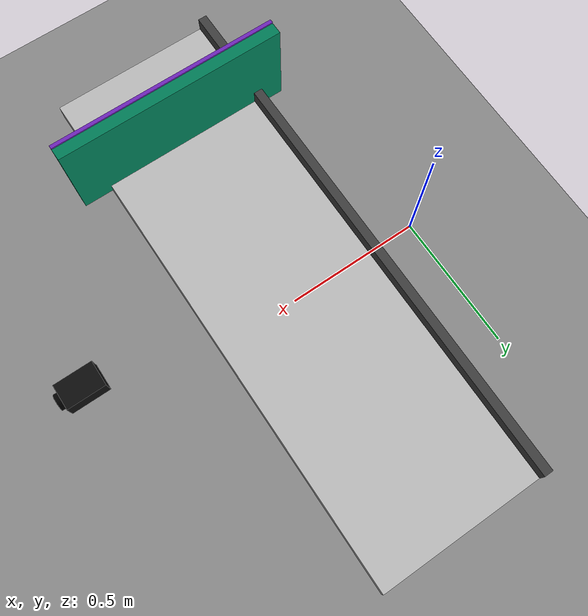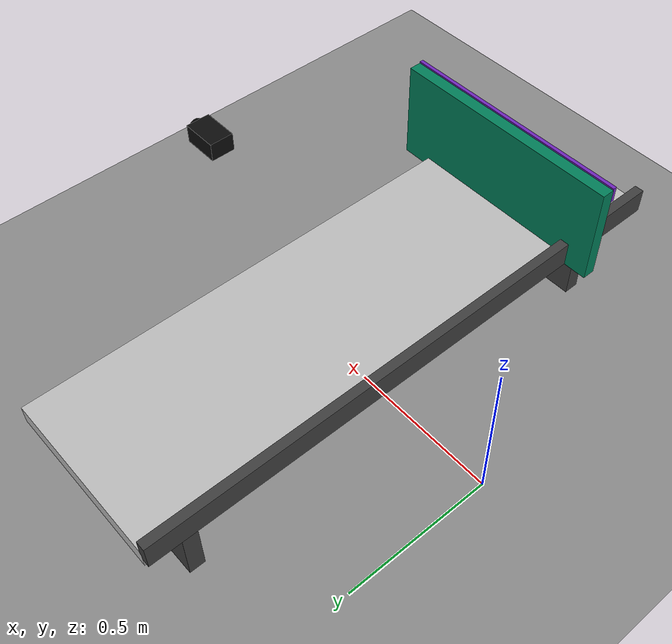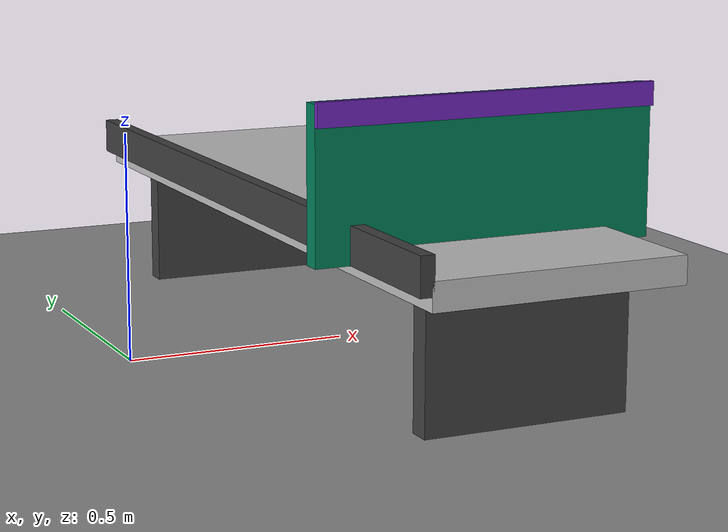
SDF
<sdf version="1.9">
 <world name="ur3_integrated">
  <plugin filename="ignition-gazebo-physics-system" name="ignition::gazebo::systems::Physics"/>
  <plugin filename="ignition-gazebo-user-commands-system" name="ignition::gazebo::systems::UserCommands"/>
  <plugin filename="ignition-gazebo-scene-broadcaster-system" name="ignition::gazebo::systems::SceneBroadcaster"/>
  <plugin filename="ignition-gazebo-sensors-system" name="ignition::gazebo::systems::Sensors">
   <render_engine>ogre2</render_engine>
  </plugin>
  <gravity>0 0 -9.8</gravity>
  <light name="sun" type="directional">
   <pose>0 0 10 0 0 0</pose>
   <diffuse>0.8 0.8 0.8 1</diffuse>
   <specular>0.2 0.2 0.2 1</specular>
   <direction>-0.5 0.1 -0.9</direction>
  </light>
  <model name="ground_plane">
   <static>true</static>
   <link name="link">
    <collision name="collision">
     <geometry><plane><normal>0 0 1</normal><size>6 6</size></plane></geometry>
    </collision>
    <visual name="visual">
     <geometry><plane><normal>0 0 1</normal><size>6 6</size></plane></geometry>
     <material><ambient>0.55 0.55 0.55 1</ambient><diffuse>0.55 0.55 0.55 1</diffuse></material>
    </visual>
   </link>
  </model>
  <include>
   <uri>model://convenience_shelf</uri>
   <name>convenience_shelf</name>
   <pose>0.55 0.0 -0.05 0 0 1.5708</pose>
  </include>
  <include>
   <uri>model://fixed_rgbd_camera</uri>
   <name>fixed_rgbd_camera</name>
   <pose>1.2 0.0 0.5 0 0 3.14159</pose>
  </include>
 </world>
</sdf>

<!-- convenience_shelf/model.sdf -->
<sdf version="1.9">
  <model name="convenience_shelf">
    <static>true</static>

    <link name="link">

      <!-- main shelf board -->
      <collision name="shelf_collision">
        <pose>0 0 0.36 0 0 0</pose>
        <geometry>
          <box>
            <size>1.80 0.55 0.06</size>
          </box>
        </geometry>
      </collision>

      <visual name="shelf_visual">
        <pose>0 0 0.36 0 0 0</pose>
        <geometry>
          <box>
            <size>1.80 0.55 0.06</size>
          </box>
        </geometry>
        <material>
          <ambient>0.75 0.75 0.75 1</ambient>
          <diffuse>0.75 0.75 0.75 1</diffuse>
        </material>
      </visual>

      <!-- lower and smaller back board -->
      <collision name="back_collision">
        <pose>-0.58 0 0.52 0 0 0</pose>
        <geometry>
          <box>
            <size>0.04 0.75 0.32</size>
          </box>
        </geometry>
      </collision>

      <visual name="back_visual">
        <pose>-0.58 0 0.52 0 0 0</pose>
        <geometry>
          <box>
            <size>0.04 0.75 0.32</size>
          </box>
        </geometry>
        <material>
          <ambient>0.0 0.50 0.35 1</ambient>
          <diffuse>0.0 0.50 0.35 1</diffuse>
        </material>
      </visual>

      <!-- purple accent strip -->
      <visual name="accent_strip">
        <pose>-0.605 0 0.66 0 0 0</pose>
        <geometry>
          <box>
            <size>0.012 0.75 0.05</size>
          </box>
        </geometry>
        <material>
          <ambient>0.45 0.15 0.75 1</ambient>
          <diffuse>0.45 0.15 0.75 1</diffuse>
        </material>
      </visual>

      <!-- front lip -->
      <collision name="front_lip_collision">
        <pose>0 0.285 0.40 0 0 0</pose>
        <geometry>
          <box>
            <size>1.80 0.03 0.08</size>
          </box>
        </geometry>
      </collision>

      <visual name="front_lip">
        <pose>0 0.285 0.40 0 0 0</pose>
        <geometry>
          <box>
            <size>1.80 0.03 0.08</size>
          </box>
        </geometry>
        <material>
          <ambient>0.25 0.25 0.25 1</ambient>
          <diffuse>0.25 0.25 0.25 1</diffuse>
        </material>
      </visual>

      <!-- left support -->
      <collision name="left_support_collision">
        <pose>-0.75 0 0.18 0 0 0</pose>
        <geometry>
          <box>
            <size>0.05 0.45 0.36</size>
          </box>
        </geometry>
      </collision>

      <visual name="left_support">
        <pose>-0.75 0 0.18 0 0 0</pose>
        <geometry>
          <box>
            <size>0.05 0.45 0.36</size>
          </box>
        </geometry>
        <material>
          <ambient>0.25 0.25 0.25 1</ambient>
          <diffuse>0.25 0.25 0.25 1</diffuse>
        </material>
      </visual>

      <!-- right support -->
      <collision name="right_support_collision">
        <pose>0.75 0 0.18 0 0 0</pose>
        <geometry>
          <box>
            <size>0.05 0.45 0.36</size>
          </box>
        </geometry>
      </collision>

      <visual name="right_support">
        <pose>0.75 0 0.18 0 0 0</pose>
        <geometry>
          <box>
            <size>0.05 0.45 0.36</size>
          </box>
        </geometry>
        <material>
          <ambient>0.25 0.25 0.25 1</ambient>
          <diffuse>0.25 0.25 0.25 1</diffuse>
        </material>
      </visual>

    </link>
  </model>
</sdf>

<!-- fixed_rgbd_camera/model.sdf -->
<sdf version="1.9">
  <model name="fixed_rgbd_camera">
    <static>true</static>

    <link name="camera_link">

      <visual name="camera_body">
        <pose>0 0 0 0 0 0</pose>
        <geometry>
          <box>
            <size>0.12 0.08 0.06</size>
          </box>
        </geometry>
        <material>
          <ambient>0.05 0.05 0.05 1</ambient>
          <diffuse>0.05 0.05 0.05 1</diffuse>
        </material>
      </visual>

      <visual name="lens">
        <pose>-0.065 0 0 0 1.5708 0</pose>
        <geometry>
          <cylinder>
            <radius>0.025</radius>
            <length>0.02</length>
          </cylinder>
        </geometry>
        <material>
          <ambient>0.0 0.0 0.0 1</ambient>
          <diffuse>0.0 0.0 0.0 1</diffuse>
        </material>
      </visual>

      <sensor name="rgb_camera" type="camera">
        <always_on>true</always_on>
        <update_rate>30</update_rate>
        <topic>/camera/image</topic>

        <camera>
          <horizontal_fov>1.047</horizontal_fov>
          <image>
            <width>640</width>
            <height>480</height>
            <format>R8G8B8</format>
          </image>
          <clip>
            <near>0.1</near>
            <far>10.0</far>
          </clip>
        </camera>
      </sensor>

      <sensor name="depth_camera" type="depth">
        <always_on>true</always_on>
        <update_rate>30</update_rate>
        <topic>/camera/depth_image</topic>

        <camera>
          <horizontal_fov>1.047</horizontal_fov>
          <image>
            <width>640</width>
            <height>480</height>
            <format>R_FLOAT32</format>
          </image>
          <clip>
            <near>0.1</near>
            <far>10.0</far>
          </clip>
        </camera>
      </sensor>

    </link>
  </model>
</sdf>
